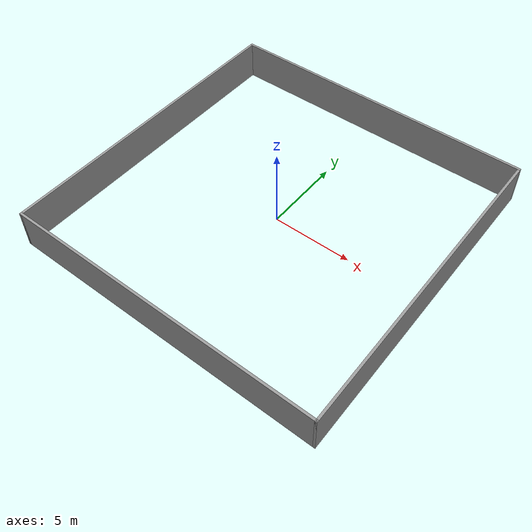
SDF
<?xml version='1.0'?>
<sdf version='1.7'>
  <model name='4Walls'>
    <pose>0.075 -0.075 0 0 -0 0</pose>
    <link name='Wall_17'>
      <collision name='Wall_17_Collision'>
        <geometry>
          <box>
            <size>20 0.15 2.5</size>
          </box>
        </geometry>
        <pose>0 0 1.25 0 -0 0</pose>
      </collision>
      <visual name='Wall_17_Visual'>
        <pose>0 0 1.25 0 -0 0</pose>
        <geometry>
          <box>
            <size>20 0.15 2.5</size>
          </box>
        </geometry>
        <material>
          <script>
            <uri>file://media/materials/scripts/gazebo.material</uri>
            <name>Gazebo/Grey</name>
          </script>
          <ambient>1 1 1 1</ambient>
        </material>
        <meta>
          <layer>0</layer>
        </meta>
      </visual>
      <pose>0 -9.925 0 0 -0 0</pose>
    </link>
    <link name='Wall_19'>
      <collision name='Wall_19_Collision'>
        <geometry>
          <box>
            <size>20 0.15 2.5</size>
          </box>
        </geometry>
        <pose>0 0 1.25 0 -0 0</pose>
      </collision>
      <visual name='Wall_19_Visual'>
        <pose>0 0 1.25 0 -0 0</pose>
        <geometry>
          <box>
            <size>20 0.15 2.5</size>
          </box>
        </geometry>
        <material>
          <script>
            <uri>file://media/materials/scripts/gazebo.material</uri>
            <name>Gazebo/Grey</name>
          </script>
          <ambient>1 1 1 1</ambient>
        </material>
        <meta>
          <layer>0</layer>
        </meta>
      </visual>
      <pose>9.925 -0 0 0 -0 1.5708</pose>
    </link>
    <link name='Wall_21'>
      <collision name='Wall_21_Collision'>
        <geometry>
          <box>
            <size>20 0.15 2.5</size>
          </box>
        </geometry>
        <pose>0 0 1.25 0 -0 0</pose>
      </collision>
      <visual name='Wall_21_Visual'>
        <pose>0 0 1.25 0 -0 0</pose>
        <geometry>
          <box>
            <size>20 0.15 2.5</size>
          </box>
        </geometry>
        <material>
          <script>
            <uri>file://media/materials/scripts/gazebo.material</uri>
            <name>Gazebo/Grey</name>
          </script>
          <ambient>1 1 1 1</ambient>
        </material>
        <meta>
          <layer>0</layer>
        </meta>
      </visual>
      <pose>0 9.925 0 0 -0 3.14159</pose>
    </link>
    <link name='Wall_22'>
      <collision name='Wall_22_Collision'>
        <geometry>
          <box>
            <size>20 0.15 2.5</size>
          </box>
        </geometry>
        <pose>0 0 1.25 0 -0 0</pose>
      </collision>
      <visual name='Wall_22_Visual'>
        <pose>0 0 1.25 0 -0 0</pose>
        <geometry>
          <box>
            <size>20 0.15 2.5</size>
          </box>
        </geometry>
        <material>
          <script>
            <uri>file://media/materials/scripts/gazebo.material</uri>
            <name>Gazebo/Grey</name>
          </script>
          <ambient>1 1 1 1</ambient>
        </material>
        <meta>
          <layer>0</layer>
        </meta>
      </visual>
      <pose>-9.925 -0 0 0 -0 -1.5708</pose>
    </link>
    <static>1</static>
  </model>
</sdf>
